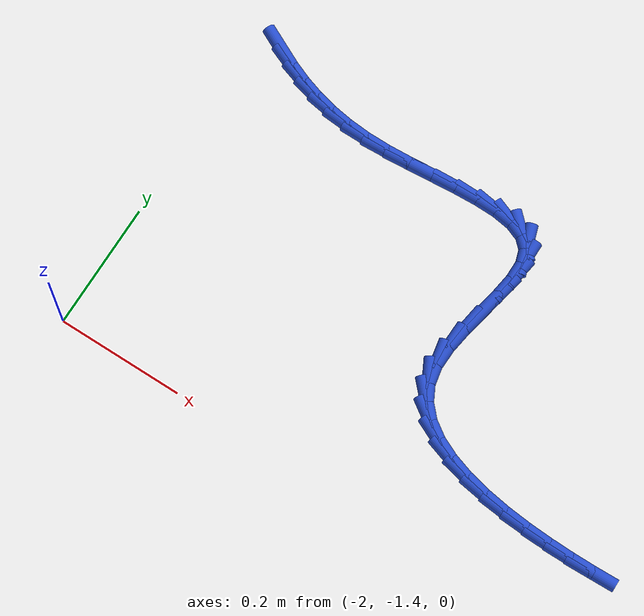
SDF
<sdf version="1.6">
 <world name="default">
  <model name="ground_plane">
   <static>1</static>
   <link name="link">
    <collision name="collision">
     <geometry><plane><normal>0 0 1</normal><size>100 100</size></plane></geometry>
     <surface><friction><ode><mu>100</mu><mu2>50</mu2></ode></friction></surface>
    </collision>
    <visual name="visual">
     <cast_shadows>0</cast_shadows>
     <geometry><plane><normal>0 0 1</normal><size>100 100</size></plane></geometry>
     <material>
      <script><uri>file://media/materials/scripts/gazebo.material</uri><name>Gazebo/WhiteGlow</name></script>
     </material>
    </visual>
   </link>
  </model>
  <model name="line">
   <link name="link_182">
    <pose>-1.958946871825183 -0.8755358960815217 0.01 0 1.57 -0.46620489704577056</pose>
    <collision name="collision">
     <geometry><cylinder><radius>0.01</radius><length>0.08</length></cylinder></geometry>
    </collision>
    <visual name="visual">
     <material>
      <script><name>Gazebo/Blue</name><uri>file://media/materials/scripts/gazebo.material</uri></script>
     </material>
     <geometry><cylinder><radius>0.01</radius><length>0.08</length></cylinder></geometry>
    </visual>
   </link>
   <link name="link_183">
    <pose>-1.931704916613708 -0.8892440672748726 0.01 0 1.57 -0.397514766379509</pose>
    <collision name="collision">
     <geometry><cylinder><radius>0.01</radius><length>0.08</length></cylinder></geometry>
    </collision>
    <visual name="visual">
     <material>
      <script><name>Gazebo/Blue</name><uri>file://media/materials/scripts/gazebo.material</uri></script>
     </material>
     <geometry><cylinder><radius>0.01</radius><length>0.08</length></cylinder></geometry>
    </visual>
   </link>
   <link name="link_184">
    <pose>-1.903675766118231 -0.9010125772320828 0.01 0 1.57 -0.3218404156881342</pose>
    <collision name="collision">
     <geometry><cylinder><radius>0.01</radius><length>0.08</length></cylinder></geometry>
    </collision>
    <visual name="visual">
     <material>
      <script><name>Gazebo/Blue</name><uri>file://media/materials/scripts/gazebo.material</uri></script>
     </material>
     <geometry><cylinder><radius>0.01</radius><length>0.08</length></cylinder></geometry>
    </visual>
   </link>
   <link name="link_185">
    <pose>-1.8745513465141657 -0.9107236251405076 0.01 0 1.57 -0.24201197890124612</pose>
    <collision name="collision">
     <geometry><cylinder><radius>0.01</radius><length>0.08</length></cylinder></geometry>
    </collision>
    <visual name="visual">
     <material>
      <script><name>Gazebo/Blue</name><uri>file://media/materials/scripts/gazebo.material</uri></script>
     </material>
     <geometry><cylinder><radius>0.01</radius><length>0.08</length></cylinder></geometry>
    </visual>
   </link>
   <link name="link_186">
    <pose>-1.844023583976925 -0.918259410187503 0.01 0 1.57 -0.16120839310879195</pose>
    <collision name="collision">
     <geometry><cylinder><radius>0.01</radius><length>0.08</length></cylinder></geometry>
    </collision>
    <visual name="visual">
     <material>
      <script><name>Gazebo/Blue</name><uri>file://media/materials/scripts/gazebo.material</uri></script>
     </material>
     <geometry><cylinder><radius>0.01</radius><length>0.08</length></cylinder></geometry>
    </visual>
   </link>
   <link name="link_187">
    <pose>-1.8117844046819223 -0.9235021315604238 0.01 0 1.57 -0.08247352656277772</pose>
    <collision name="collision">
     <geometry><cylinder><radius>0.01</radius><length>0.08</length></cylinder></geometry>
    </collision>
    <visual name="visual">
     <material>
      <script><name>Gazebo/Blue</name><uri>file://media/materials/scripts/gazebo.material</uri></script>
     </material>
     <geometry><cylinder><radius>0.01</radius><length>0.08</length></cylinder></geometry>
    </visual>
   </link>
   <link name="link_188">
    <pose>-1.7775257348045712 -0.926333988446626 0.01 0 1.57 -0.008505463815756136</pose>
    <collision name="collision">
     <geometry><cylinder><radius>0.01</radius><length>0.08</length></cylinder></geometry>
    </collision>
    <visual name="visual">
     <material>
      <script><name>Gazebo/Blue</name><uri>file://media/materials/scripts/gazebo.material</uri></script>
     </material>
     <geometry><cylinder><radius>0.01</radius><length>0.08</length></cylinder></geometry>
    </visual>
   </link>
   <link name="link_189">
    <pose>-1.7409497854012035 -0.92664509136287 0.01 0 1.57 0.04784601357924666</pose>
    <collision name="collision">
     <geometry><cylinder><radius>0.01</radius><length>0.08</length></cylinder></geometry>
    </collision>
    <visual name="visual">
     <material>
      <script><name>Gazebo/Blue</name><uri>file://media/materials/scripts/gazebo.material</uri></script>
     </material>
     <geometry><cylinder><radius>0.01</radius><length>0.08</length></cylinder></geometry>
    </visual>
   </link>
   <link name="link_190">
    <pose>-1.7023728695390787 -0.924797929974984 0.01 0 1.57 0.07394183563009483</pose>
    <collision name="collision">
     <geometry><cylinder><radius>0.01</radius><length>0.08</length></cylinder></geometry>
    </collision>
    <visual name="visual">
     <material>
      <script><name>Gazebo/Blue</name><uri>file://media/materials/scripts/gazebo.material</uri></script>
     </material>
     <geometry><cylinder><radius>0.01</radius><length>0.08</length></cylinder></geometry>
    </visual>
   </link>
   <link name="link_191">
    <pose>-1.6630614426383639 -0.921885861830958 0.01 0 1.57 0.0727666545443989</pose>
    <collision name="collision">
     <geometry><cylinder><radius>0.01</radius><length>0.08</length></cylinder></geometry>
    </collision>
    <visual name="visual">
     <material>
      <script><name>Gazebo/Blue</name><uri>file://media/materials/scripts/gazebo.material</uri></script>
     </material>
     <geometry><cylinder><radius>0.01</radius><length>0.08</length></cylinder></geometry>
    </visual>
   </link>
   <link name="link_192">
    <pose>-1.624363492589713 -0.9190649608326551 0.01 0 1.57 0.042810259654944324</pose>
    <collision name="collision">
     <geometry><cylinder><radius>0.01</radius><length>0.08</length></cylinder></geometry>
    </collision>
    <visual name="visual">
     <material>
      <script><name>Gazebo/Blue</name><uri>file://media/materials/scripts/gazebo.material</uri></script>
     </material>
     <geometry><cylinder><radius>0.01</radius><length>0.08</length></cylinder></geometry>
    </visual>
   </link>
   <link name="link_193">
    <pose>-1.5876270072837804 -0.9174913008819378 0.01 0 1.57 -0.024814787080657624</pose>
    <collision name="collision">
     <geometry><cylinder><radius>0.01</radius><length>0.08</length></cylinder></geometry>
    </collision>
    <visual name="visual">
     <material>
      <script><name>Gazebo/Blue</name><uri>file://media/materials/scripts/gazebo.material</uri></script>
     </material>
     <geometry><cylinder><radius>0.01</radius><length>0.08</length></cylinder></geometry>
    </visual>
   </link>
   <link name="link_194">
    <pose>-1.5541999746112194 -0.9183209558806679 0.01 0 1.57 -0.15139113703849472</pose>
    <collision name="collision">
     <geometry><cylinder><radius>0.01</radius><length>0.08</length></cylinder></geometry>
    </collision>
    <visual name="visual">
     <material>
      <script><name>Gazebo/Blue</name><uri>file://media/materials/scripts/gazebo.material</uri></script>
     </material>
     <geometry><cylinder><radius>0.01</radius><length>0.08</length></cylinder></geometry>
    </visual>
   </link>
   <link name="link_195">
    <pose>-1.5254303824626854 -0.9227099997307084 0.01 0 1.57 -0.3804624896699857</pose>
    <collision name="collision">
     <geometry><cylinder><radius>0.01</radius><length>0.08</length></cylinder></geometry>
    </collision>
    <visual name="visual">
     <material>
      <script><name>Gazebo/Blue</name><uri>file://media/materials/scripts/gazebo.material</uri></script>
     </material>
     <geometry><cylinder><radius>0.01</radius><length>0.08</length></cylinder></geometry>
    </visual>
   </link>
   <link name="link_196">
    <pose>-1.5026662187288318 -0.9318145063339214 0.01 0 1.57 -0.7710934438270485</pose>
    <collision name="collision">
     <geometry><cylinder><radius>0.01</radius><length>0.08</length></cylinder></geometry>
    </collision>
    <visual name="visual">
     <material>
      <script><name>Gazebo/Blue</name><uri>file://media/materials/scripts/gazebo.material</uri></script>
     </material>
     <geometry><cylinder><radius>0.01</radius><length>0.08</length></cylinder></geometry>
    </visual>
   </link>
   <link name="link_197">
    <pose>-1.4872554713003132 -0.9467905495921696 0.01 0 1.57 -1.2567428024467429</pose>
    <collision name="collision">
     <geometry><cylinder><radius>0.01</radius><length>0.08</length></cylinder></geometry>
    </collision>
    <visual name="visual">
     <material>
      <script><name>Gazebo/Blue</name><uri>file://media/materials/scripts/gazebo.material</uri></script>
     </material>
     <geometry><cylinder><radius>0.01</radius><length>0.08</length></cylinder></geometry>
    </visual>
   </link>
   <link name="link_198">
    <pose>-1.480195428137933 -0.9685269485773838 0.01 0 1.57 -1.5693745343334593</pose>
    <collision name="collision">
     <geometry><cylinder><radius>0.01</radius><length>0.08</length></cylinder></geometry>
    </collision>
    <visual name="visual">
     <material>
      <script><name>Gazebo/Blue</name><uri>file://media/materials/scripts/gazebo.material</uri></script>
     </material>
     <geometry><cylinder><radius>0.01</radius><length>0.08</length></cylinder></geometry>
    </visual>
   </link>
   <link name="link_199">
    <pose>-1.4801561694374108 -0.996139047483018 0.01 0 1.57 1.4243099943036814</pose>
    <collision name="collision">
     <geometry><cylinder><radius>0.01</radius><length>0.08</length></cylinder></geometry>
    </collision>
    <visual name="visual">
     <material>
      <script><name>Gazebo/Blue</name><uri>file://media/materials/scripts/gazebo.material</uri></script>
     </material>
     <geometry><cylinder><radius>0.01</radius><length>0.08</length></cylinder></geometry>
    </visual>
   </link>
   <link name="link_200">
    <pose>-1.4848599729782535 -1.0280199070003253 0.01 0 1.57 1.366221812289416</pose>
    <collision name="collision">
     <geometry><cylinder><radius>0.01</radius><length>0.08</length></cylinder></geometry>
    </collision>
    <visual name="visual">
     <material>
      <script><name>Gazebo/Blue</name><uri>file://media/materials/scripts/gazebo.material</uri></script>
     </material>
     <geometry><cylinder><radius>0.01</radius><length>0.08</length></cylinder></geometry>
    </visual>
   </link>
   <link name="link_201">
    <pose>-1.492026345893363 -1.0625604764181216 0.01 0 1.57 1.3671893520727016</pose>
    <collision name="collision">
     <geometry><cylinder><radius>0.01</radius><length>0.08</length></cylinder></geometry>
    </collision>
    <visual name="visual">
     <material>
      <script><name>Gazebo/Blue</name><uri>file://media/materials/scripts/gazebo.material</uri></script>
     </material>
     <geometry><cylinder><radius>0.01</radius><length>0.08</length></cylinder></geometry>
    </visual>
   </link>
   <link name="link_202">
    <pose>-1.4993747953156384 -1.0981517050252203 0.01 0 1.57 1.4220429635988847</pose>
    <collision name="collision">
     <geometry><cylinder><radius>0.01</radius><length>0.08</length></cylinder></geometry>
    </collision>
    <visual name="visual">
     <material>
      <script><name>Gazebo/Blue</name><uri>file://media/materials/scripts/gazebo.material</uri></script>
     </material>
     <geometry><cylinder><radius>0.01</radius><length>0.08</length></cylinder></geometry>
    </visual>
   </link>
   <link name="link_203">
    <pose>-1.5046248283779813 -1.1331845421104354 0.01 0 1.57 1.5442967237862912</pose>
    <collision name="collision">
     <geometry><cylinder><radius>0.01</radius><length>0.08</length></cylinder></geometry>
    </collision>
    <visual name="visual">
     <material>
      <script><name>Gazebo/Blue</name><uri>file://media/materials/scripts/gazebo.material</uri></script>
     </material>
     <geometry><cylinder><radius>0.01</radius><length>0.08</length></cylinder></geometry>
    </visual>
   </link>
   <link name="link_204">
    <pose>-1.5054959522132925 -1.1660499369625819 0.01 0 1.57 -1.377311909906738</pose>
    <collision name="collision">
     <geometry><cylinder><radius>0.01</radius><length>0.08</length></cylinder></geometry>
    </collision>
    <visual name="visual">
     <material>
      <script><name>Gazebo/Blue</name><uri>file://media/materials/scripts/gazebo.material</uri></script>
     </material>
     <geometry><cylinder><radius>0.01</radius><length>0.08</length></cylinder></geometry>
    </visual>
   </link>
   <link name="link_205">
    <pose>-1.4997869264405015 -1.195187197621548 0.01 0 1.57 -1.0914270125274803</pose>
    <collision name="collision">
     <geometry><cylinder><radius>0.01</radius><length>0.08</length></cylinder></geometry>
    </collision>
    <visual name="visual">
     <material>
      <script><name>Gazebo/Blue</name><uri>file://media/materials/scripts/gazebo.material</uri></script>
     </material>
     <geometry><cylinder><radius>0.01</radius><length>0.08</length></cylinder></geometry>
    </visual>
   </link>
   <link name="link_206">
    <pose>-1.4868860980302365 -1.220005575947339 0.01 0 1.57 -0.8246205273626781</pose>
    <collision name="collision">
     <geometry><cylinder><radius>0.01</radius><length>0.08</length></cylinder></geometry>
    </collision>
    <visual name="visual">
     <material>
      <script><name>Gazebo/Blue</name><uri>file://media/materials/scripts/gazebo.material</uri></script>
     </material>
     <geometry><cylinder><radius>0.01</radius><length>0.08</length></cylinder></geometry>
    </visual>
   </link>
   <link name="link_207">
    <pose>-1.4676517108498337 -1.240811234189719 0.01 0 1.57 -0.607307477792773</pose>
    <collision name="collision">
     <geometry><cylinder><radius>0.01</radius><length>0.08</length></cylinder></geometry>
    </collision>
    <visual name="visual">
     <material>
      <script><name>Gazebo/Blue</name><uri>file://media/materials/scripts/gazebo.material</uri></script>
     </material>
     <geometry><cylinder><radius>0.01</radius><length>0.08</length></cylinder></geometry>
    </visual>
   </link>
   <link name="link_208">
    <pose>-1.4429972771662556 -1.2579440585977086 0.01 0 1.57 -0.4420040807850043</pose>
    <collision name="collision">
     <geometry><cylinder><radius>0.01</radius><length>0.08</length></cylinder></geometry>
    </collision>
    <visual name="visual">
     <material>
      <script><name>Gazebo/Blue</name><uri>file://media/materials/scripts/gazebo.material</uri></script>
     </material>
     <geometry><cylinder><radius>0.01</radius><length>0.08</length></cylinder></geometry>
    </visual>
   </link>
   <link name="link_209">
    <pose>-1.4138363092464679 -1.2717439354203268 0.01 0 1.57 -0.31869246229445614</pose>
    <collision name="collision">
     <geometry><cylinder><radius>0.01</radius><length>0.08</length></cylinder></geometry>
    </collision>
    <visual name="visual">
     <material>
      <script><name>Gazebo/Blue</name><uri>file://media/materials/scripts/gazebo.material</uri></script>
     </material>
     <geometry><cylinder><radius>0.01</radius><length>0.08</length></cylinder></geometry>
    </visual>
   </link>
   <link name="link_210">
    <pose>-1.3810823193574329 -1.2825507509065948 0.01 0 1.57 -0.22617387219678314</pose>
    <collision name="collision">
     <geometry><cylinder><radius>0.01</radius><length>0.08</length></cylinder></geometry>
    </collision>
    <visual name="visual">
     <material>
      <script><name>Gazebo/Blue</name><uri>file://media/materials/scripts/gazebo.material</uri></script>
     </material>
     <geometry><cylinder><radius>0.01</radius><length>0.08</length></cylinder></geometry>
    </visual>
   </link>
   <link name="link_211">
    <pose>-1.3456488197661136 -1.2907043913055325 0.01 0 1.57 -0.15572958478543533</pose>
    <collision name="collision">
     <geometry><cylinder><radius>0.01</radius><length>0.08</length></cylinder></geometry>
    </collision>
    <visual name="visual">
     <material>
      <script><name>Gazebo/Blue</name><uri>file://media/materials/scripts/gazebo.material</uri></script>
     </material>
     <geometry><cylinder><radius>0.01</radius><length>0.08</length></cylinder></geometry>
    </visual>
   </link>
   <link name="link_212">
    <pose>-1.3084493227394733 -1.2965447428661594 0.01 0 1.57 -0.10127512553831518</pose>
    <collision name="collision">
     <geometry><cylinder><radius>0.01</radius><length>0.08</length></cylinder></geometry>
    </collision>
    <visual name="visual">
     <material>
      <script><name>Gazebo/Blue</name><uri>file://media/materials/scripts/gazebo.material</uri></script>
     </material>
     <geometry><cylinder><radius>0.01</radius><length>0.08</length></cylinder></geometry>
    </visual>
   </link>
   <link name="link_213">
    <pose>-1.2703973405444762 -1.300411691837497 0.01 0 1.57 -0.05872094989172758</pose>
    <collision name="collision">
     <geometry><cylinder><radius>0.01</radius><length>0.08</length></cylinder></geometry>
    </collision>
    <visual name="visual">
     <material>
      <script><name>Gazebo/Blue</name><uri>file://media/materials/scripts/gazebo.material</uri></script>
     </material>
     <geometry><cylinder><radius>0.01</radius><length>0.08</length></cylinder></geometry>
    </visual>
   </link>
   <link name="link_214">
    <pose>-1.2324063854480847 -1.3026451244685642 0.01 0 1.57 -0.025383351407395505</pose>
    <collision name="collision">
     <geometry><cylinder><radius>0.01</radius><length>0.08</length></cylinder></geometry>
    </collision>
    <visual name="visual">
     <material>
      <script><name>Gazebo/Blue</name><uri>file://media/materials/scripts/gazebo.material</uri></script>
     </material>
     <geometry><cylinder><radius>0.01</radius><length>0.08</length></cylinder></geometry>
    </visual>
   </link>
   <link name="link_215">
    <pose>-1.195389969717263 -1.3035849270083826 0.01 0 1.57 0.0004757976912751023</pose>
    <collision name="collision">
     <geometry><cylinder><radius>0.01</radius><length>0.08</length></cylinder></geometry>
    </collision>
    <visual name="visual">
     <material>
      <script><name>Gazebo/Blue</name><uri>file://media/materials/scripts/gazebo.material</uri></script>
     </material>
     <geometry><cylinder><radius>0.01</radius><length>0.08</length></cylinder></geometry>
    </visual>
   </link>
   <link name="link_216">
    <pose>-1.160255664738408 -1.3035682101859276 0.01 0 1.57 0.02582592684220088</pose>
    <collision name="collision">
     <geometry><cylinder><radius>0.01</radius><length>0.08</length></cylinder></geometry>
    </collision>
    <visual name="visual">
     <material>
      <script><name>Gazebo/Blue</name><uri>file://media/materials/scripts/gazebo.material</uri></script>
     </material>
     <geometry><cylinder><radius>0.01</radius><length>0.08</length></cylinder></geometry>
    </visual>
   </link>
  </model>
 </world>
</sdf>
